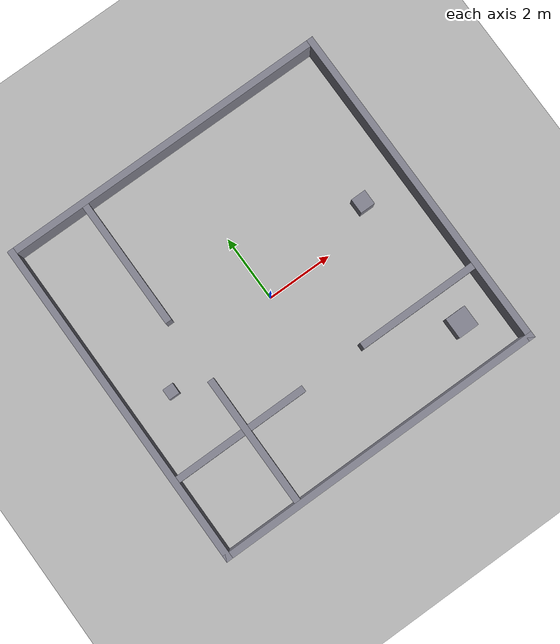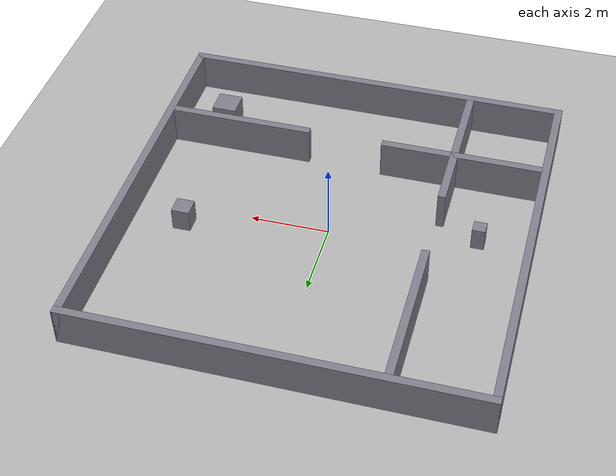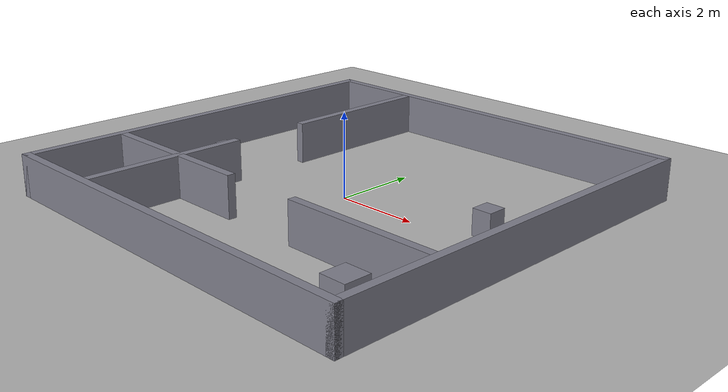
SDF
<?xml version="1.0"?>
<sdf version="1.10">
  <world name="scenario_7">
    <physics name="fast" type="ignored">
      <max_step_size>0.005</max_step_size>
      <real_time_factor>1.0</real_time_factor>
      <real_time_update_rate>200</real_time_update_rate>
    </physics>
    <plugin filename="gz-sim-physics-system" name="gz::sim::systems::Physics"/>
    <plugin filename="gz-sim-user-commands-system" name="gz::sim::systems::UserCommands"/>
    <plugin filename="gz-sim-scene-broadcaster-system" name="gz::sim::systems::SceneBroadcaster"/>
    <plugin filename="gz-sim-sensors-system" name="gz::sim::systems::Sensors">
      <render_engine>ogre2</render_engine>
    </plugin>
    <light type="directional" name="sun">
      <cast_shadows>false</cast_shadows>
      <pose>0 0 10 0 0 0</pose>
      <diffuse>0.9 0.9 0.9 1</diffuse>
      <direction>-0.5 0.2 -0.9</direction>
    </light>
    <model name="ground_plane">
      <static>true</static>
      <link name="link">
        <collision name="c"><geometry><plane><normal>0 0 1</normal><size>20 20</size></plane></geometry></collision>
        <visual name="v"><geometry><plane><normal>0 0 1</normal><size>20 20</size></plane></geometry>
          <material><ambient>0.7 0.7 0.7 1</ambient><diffuse>0.7 0.7 0.7 1</diffuse></material></visual>
      </link>
    </model>
    <model name="box_0">
      <static>true</static>
      <pose>0.0 5.0 0.5 0 0 0</pose>
      <link name="link">
        <collision name="c"><geometry><box><size>10.2 0.2 1.0</size></box></geometry></collision>
        <visual name="v"><geometry><box><size>10.2 0.2 1.0</size></box></geometry>
          <material><ambient>0.5 0.5 0.55 1</ambient><diffuse>0.5 0.5 0.55 1</diffuse></material></visual>
      </link>
    </model>
    <model name="box_1">
      <static>true</static>
      <pose>0.0 -5.0 0.5 0 0 0</pose>
      <link name="link">
        <collision name="c"><geometry><box><size>10.2 0.2 1.0</size></box></geometry></collision>
        <visual name="v"><geometry><box><size>10.2 0.2 1.0</size></box></geometry>
          <material><ambient>0.5 0.5 0.55 1</ambient><diffuse>0.5 0.5 0.55 1</diffuse></material></visual>
      </link>
    </model>
    <model name="box_2">
      <static>true</static>
      <pose>5.0 0.0 0.5 0 0 0</pose>
      <link name="link">
        <collision name="c"><geometry><box><size>0.2 10.2 1.0</size></box></geometry></collision>
        <visual name="v"><geometry><box><size>0.2 10.2 1.0</size></box></geometry>
          <material><ambient>0.5 0.5 0.55 1</ambient><diffuse>0.5 0.5 0.55 1</diffuse></material></visual>
      </link>
    </model>
    <model name="box_3">
      <static>true</static>
      <pose>-5.0 0.0 0.5 0 0 0</pose>
      <link name="link">
        <collision name="c"><geometry><box><size>0.2 10.2 1.0</size></box></geometry></collision>
        <visual name="v"><geometry><box><size>0.2 10.2 1.0</size></box></geometry>
          <material><ambient>0.5 0.5 0.55 1</ambient><diffuse>0.5 0.5 0.55 1</diffuse></material></visual>
      </link>
    </model>
    <model name="box_4">
      <static>true</static>
      <pose>-2.8259304472091333 -2.57 0.5 0 0 0</pose>
      <link name="link">
        <collision name="c"><geometry><box><size>4.148139105581734 0.2 1.0</size></box></geometry></collision>
        <visual name="v"><geometry><box><size>4.148139105581734 0.2 1.0</size></box></geometry>
          <material><ambient>0.5 0.5 0.55 1</ambient><diffuse>0.5 0.5 0.55 1</diffuse></material></visual>
      </link>
    </model>
    <model name="box_5">
      <static>true</static>
      <pose>3.039069552790867 -2.57 0.5 0 0 0</pose>
      <link name="link">
        <collision name="c"><geometry><box><size>3.7218608944182665 0.2 1.0</size></box></geometry></collision>
        <visual name="v"><geometry><box><size>3.7218608944182665 0.2 1.0</size></box></geometry>
          <material><ambient>0.5 0.5 0.55 1</ambient><diffuse>0.5 0.5 0.55 1</diffuse></material></visual>
      </link>
    </model>
    <model name="box_6">
      <static>true</static>
      <pose>-2.65 -2.910415872427422 0.5 0 0 0</pose>
      <link name="link">
        <collision name="c"><geometry><box><size>0.2 3.979168255145157 1.0</size></box></geometry></collision>
        <visual name="v"><geometry><box><size>0.2 3.979168255145157 1.0</size></box></geometry>
          <material><ambient>0.5 0.5 0.55 1</ambient><diffuse>0.5 0.5 0.55 1</diffuse></material></visual>
      </link>
    </model>
    <model name="box_7">
      <static>true</static>
      <pose>-2.65 2.9545841275725784 0.5 0 0 0</pose>
      <link name="link">
        <collision name="c"><geometry><box><size>0.2 3.890831744854844 1.0</size></box></geometry></collision>
        <visual name="v"><geometry><box><size>0.2 3.890831744854844 1.0</size></box></geometry>
          <material><ambient>0.5 0.5 0.55 1</ambient><diffuse>0.5 0.5 0.55 1</diffuse></material></visual>
      </link>
    </model>
    <model name="box_8">
      <static>true</static>
      <pose>-3.7 -0.53 0.3 0 0 0</pose>
      <link name="link">
        <collision name="c"><geometry><box><size>0.33 0.33 0.6</size></box></geometry></collision>
        <visual name="v"><geometry><box><size>0.33 0.33 0.6</size></box></geometry>
          <material><ambient>0.5 0.5 0.55 1</ambient><diffuse>0.5 0.5 0.55 1</diffuse></material></visual>
      </link>
    </model>
    <model name="box_9">
      <static>true</static>
      <pose>3.58 0.62 0.3 0 0 0</pose>
      <link name="link">
        <collision name="c"><geometry><box><size>0.46 0.46 0.6</size></box></geometry></collision>
        <visual name="v"><geometry><box><size>0.46 0.46 0.6</size></box></geometry>
          <material><ambient>0.5 0.5 0.55 1</ambient><diffuse>0.5 0.5 0.55 1</diffuse></material></visual>
      </link>
    </model>
    <model name="box_10">
      <static>true</static>
      <pose>3.81 -3.63 0.3 0 0 0</pose>
      <link name="link">
        <collision name="c"><geometry><box><size>0.64 0.64 0.6</size></box></geometry></collision>
        <visual name="v"><geometry><box><size>0.64 0.64 0.6</size></box></geometry>
          <material><ambient>0.5 0.5 0.55 1</ambient><diffuse>0.5 0.5 0.55 1</diffuse></material></visual>
      </link>
    </model>
  </world>
</sdf>
